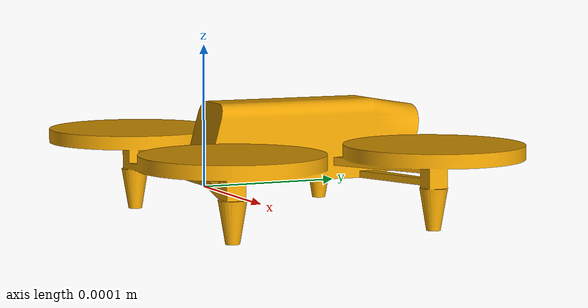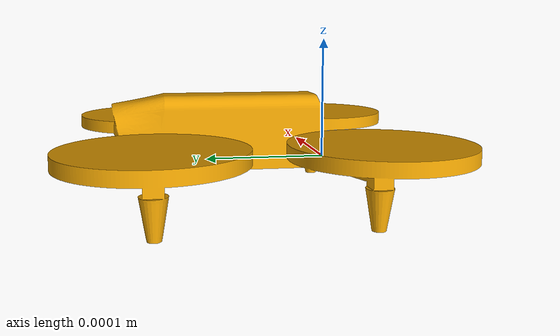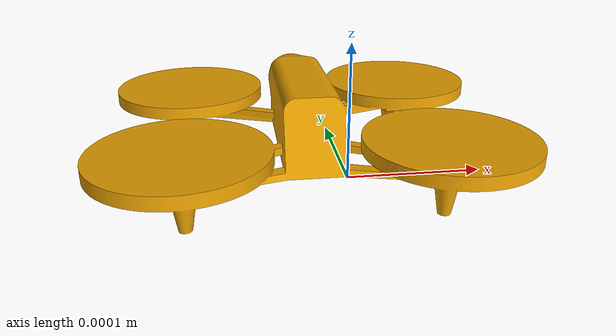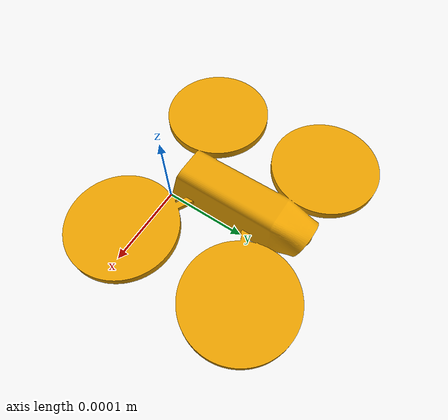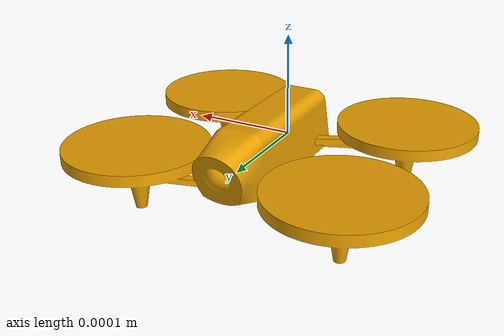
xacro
<?xml version="1.0"?>
<!-- Kinematic model, simplified visual, no collisions -->
<robot name="bebop" xmlns:xacro="http://www.ros.org/wiki/xacro">
  <xacro:property name="PI" value="3.1415926535897931" />
  <!-- +- 35 degrees -->
  <xacro:property name="pan_range" value="0.610865" />
  <xacro:property name="pan_vel" value="2.0" />
  <!-- +- 35 degrees -->
  <xacro:property name="tilt_range" value="0.610865" />
  <xacro:property name="tilt_vel" value="2.0" />
  <xacro:property name="joint_effort" value="50" />

  <link name="base_link">
   <visual>
   <origin rpy="0 0 1.57075" xyz="0 0 0"/>
      <geometry>
        <mesh scale=".001 .001 .001" filename="package://bebop_description/meshes/bebop_model.stl"/>
      </geometry>
   </visual>
<collision>
      <origin rpy="0 0 1.57075" xyz="0 0 0"/>
      <geometry>
        <mesh filename="package://bebop_description/meshes/bebop_model.stl"/>
      </geometry>
    </collision>
  </link>
<link name="innertia_link">
    <inertial>
      <mass value="0.420"/>
      <origin xyz="0 0 0"/>
      <inertia ixx="0.01152" ixy="0.0" ixz="0.0" iyy="0.01152" iyz="0.0" izz="0.0218"/>
    </inertial>
  </link>
  <link name="camera_base_link"></link>
  <link name="camera_pan_link"></link>
  <link name="camera_tilt_link"></link>
  <link name="camera_optical"></link>

  <joint name="base_link_joint" type="fixed">
    <origin xyz="0.1 0.0 0.0" rpy="0 0 0" />
    <parent link="base_link"/>
    <child link="camera_base_link" />
  </joint>

  <joint name="camera_pan_joint" type="revolute">
    <origin xyz="0 0 0" rpy="0 0 0" />
    <parent link="camera_base_link" />
    <child link="camera_pan_link" />
    <axis xyz="0 0 1" />
    <limit lower="-0.610865" upper="0.610865"
      effort="50" velocity="2" />
  </joint>

  <joint name="camera_tilt_joint" type="revolute">
    <origin xyz="0 0 0" rpy="0 0 0" />
    <parent link="camera_pan_link" />
    <child link="camera_tilt_link" />
    <axis xyz="0 1 0" />
    <limit lower="-0.610865" upper="0.610865"
      effort="50" velocity="2" />
  </joint>

  <joint name="camera_optical_joint" type="fixed">
    <origin xyz="0 0 0" rpy="-1.57079632679 0 -1.57079632679" />
    <parent link="camera_tilt_link" />
    <child link="camera_optical" />
  </joint>

  <joint name="innertia_joint" type="fixed">
    <origin rpy="0 0 0" xyz="0 0 0"/>
    <parent link="base_link"/>
    <child link="innertia_link"/>
  </joint>
<joint name="camera_depth_joint" type="fixed">
    <origin rpy="0 0 0" xyz="0.0 -0.02 0.0"/>
    <parent link="camera_base_link"/>
    <child link="camera_depth_frame"/>
  </joint>
  <link name="camera_depth_frame"/>
  <joint name="camera_depth_optical_joint" type="fixed">
    <origin rpy="-1.57079632679 0.0 -1.57079632679" xyz="0 0 0"/>
    <parent link="camera_depth_frame"/>
    <child link="camera_depth_optical_frame"/>
  </joint>
  <link name="camera_depth_optical_frame"/>
  <joint name="camera_rgb_joint" type="fixed">
    <origin rpy="0 0 0" xyz="0.0 -0.0125 0.0"/>
    <parent link="camera_base_link"/>
    <child link="camera_rgb_frame"/>
  </joint>
  <link name="camera_rgb_frame"/>
  <joint name="camera_rgb_optical_joint" type="fixed">
    <origin rpy="-1.57079632679 0.0 -1.57079632679" xyz="0 0 0"/>
    <parent link="camera_rgb_frame"/>
    <child link="camera_rgb_optical_frame"/>
  </joint>
  <link name="camera_rgb_optical_frame"/>

</robot>
